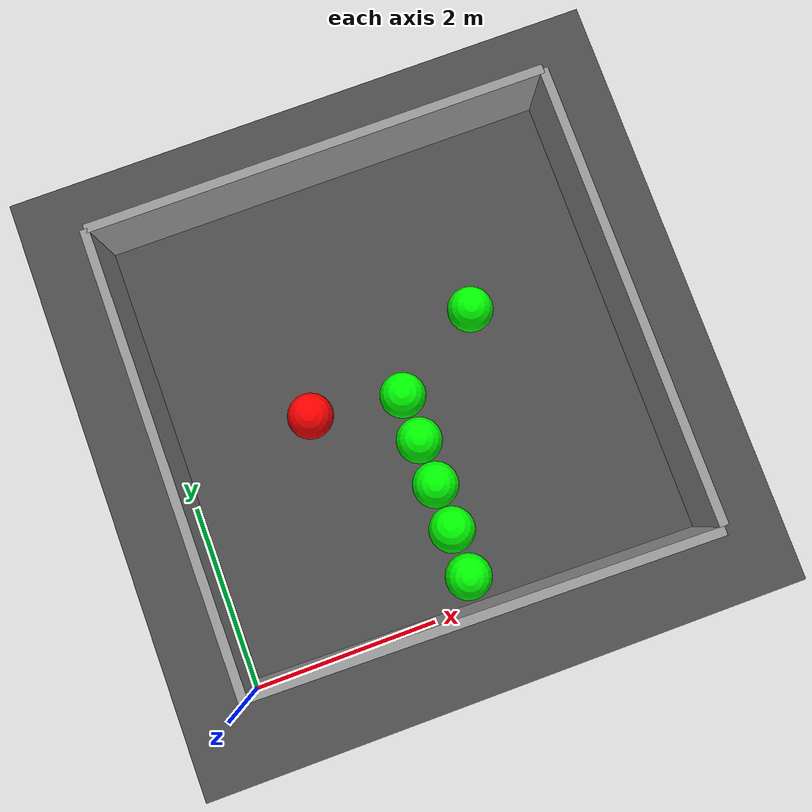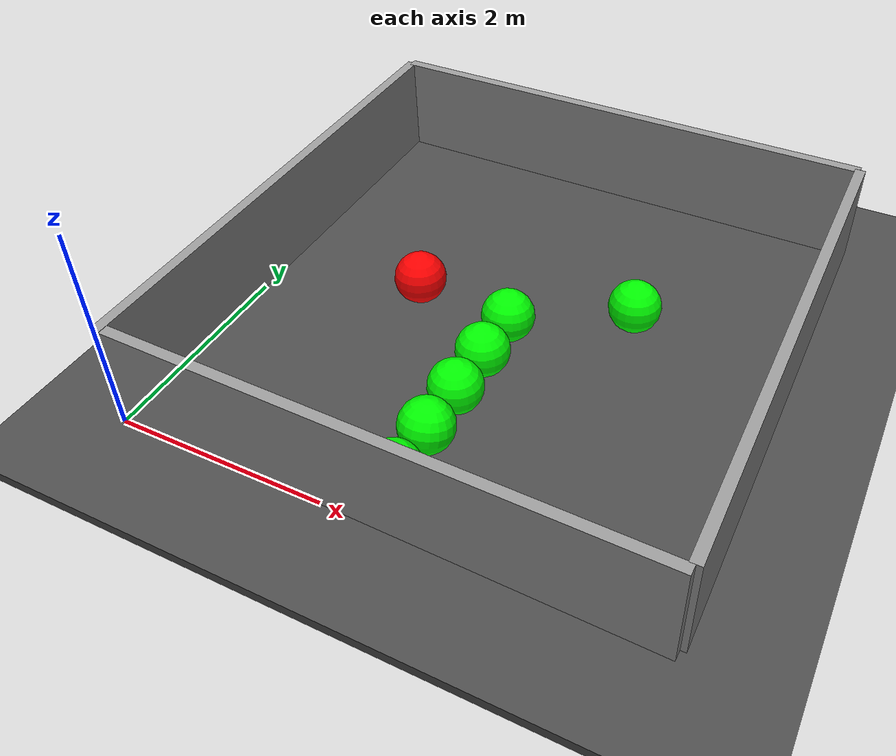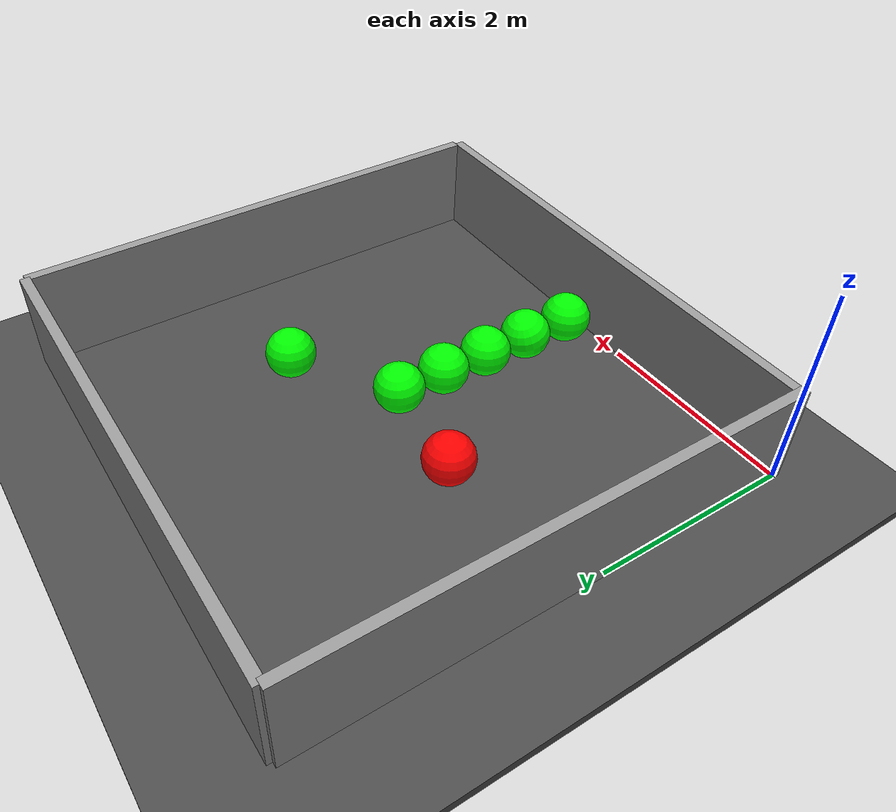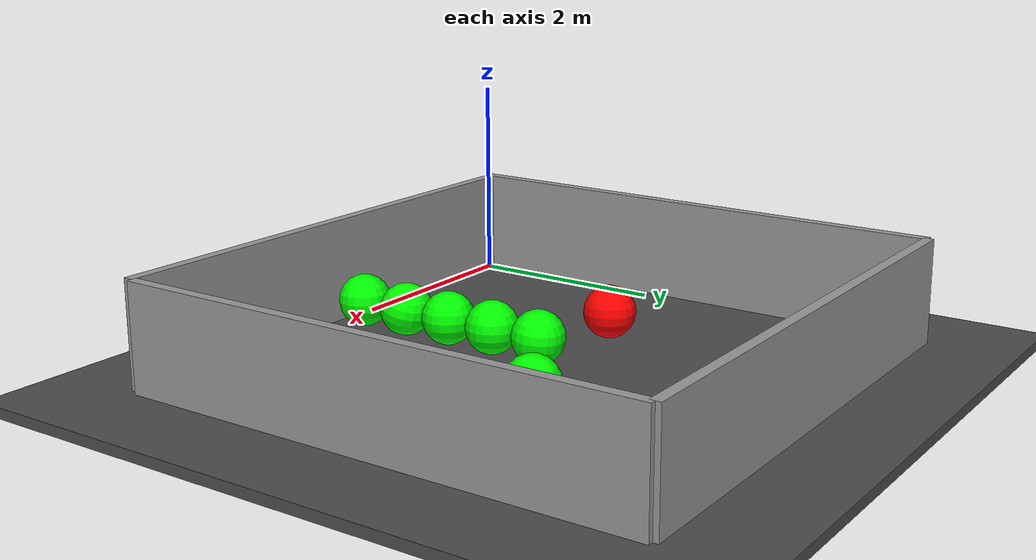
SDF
<sdf version="1.7">
 <world name="default">
  <light name="sun" type="directional">
   <pose>0 0 10 0 -0 0</pose>
   <diffuse>0.8 0.8 0.8 1</diffuse>
   <specular>0.2 0.2 0.2 1</specular>
   <attenuation>
    <range>1000</range>
    <constant>0.9</constant>
    <linear>0.01</linear>
    <quadratic>0.001</quadratic>
   </attenuation>
   <direction>-0.5 0.1 -0.9</direction>
   <spot><inner_angle>0</inner_angle><outer_angle>0</outer_angle><falloff>0</falloff></spot>
  </light>
  <model name="ground_plane">
   <static>1</static>
   <link name="link">
    <collision name="collision">
     <geometry><plane><normal>0 0 1</normal><size>100 100</size></plane></geometry>
     <surface><friction><ode><mu>100</mu><mu2>50</mu2></ode></friction></surface>
    </collision>
    <visual name="visual">
     <cast_shadows>0</cast_shadows>
     <geometry><plane><normal>0 0 1</normal><size>100 100</size></plane></geometry>
     <material>
      <script><uri>file://media/materials/scripts/gazebo.material</uri><name>Gazebo/Grey</name></script>
     </material>
    </visual>
   </link>
  </model>
  <gravity>0 0 -9.8</gravity>
  <magnetic_field>6e-06 2.3e-05 -4.2e-05</magnetic_field>
  <atmosphere type="adiabatic"/>
  <physics type="ode">
   <max_step_size>0.001</max_step_size>
   <real_time_factor>1</real_time_factor>
   <real_time_update_rate>1000</real_time_update_rate>
  </physics>
  <scene><ambient>0.4 0.4 0.4 1</ambient><background>0.7 0.7 0.7 1</background><shadows>1</shadows></scene>
  <spherical_coordinates>
   <surface_model>EARTH_WGS84</surface_model>
   <latitude_deg>0</latitude_deg>
   <longitude_deg>0</longitude_deg>
   <elevation>0</elevation>
   <heading_deg>0</heading_deg>
  </spherical_coordinates>
  <audio><device>default</device></audio>
  <model name="asphalt_plane">
   <link name="link">
    <inertial>
     <mass>1</mass>
     <inertia><ixx>1</ixx><ixy>0</ixy><ixz>0</ixz><iyy>1</iyy><iyz>0</iyz><izz>1</izz></inertia>
    </inertial>
    <visual name="visual">
     <cast_shadows>0</cast_shadows>
     <geometry><box><size>20 20 0.1</size></box></geometry>
     <material>
      <script>
       <uri>model://asphalt_plane/materials/scripts</uri>
       <uri>model://asphalt_plane/materials/textures</uri>
       <name>vrc/asphalt</name>
      </script>
      <shader type="pixel"><normal_map>__default__</normal_map></shader>
      <ambient>1 1 1 1</ambient>
      <diffuse>0.5 0.5 0.5 1</diffuse>
      <specular>0.2 0.2 0.2 1</specular>
      <emissive>0 0 0 1</emissive>
     </material>
    </visual>
    <collision name="collision">
     <geometry><box><size>20 20 0.1</size></box></geometry>
     <surface>
      <friction>
       <ode><mu>1</mu><mu2>1</mu2><fdir1>0 0 0</fdir1><slip1>0</slip1><slip2>0</slip2></ode>
       <torsional>
        <coefficient>1</coefficient>
        <patch_radius>0</patch_radius>
        <surface_radius>0</surface_radius>
        <use_patch_radius>1</use_patch_radius>
        <ode><slip>0</slip></ode>
       </torsional>
      </friction>
      <bounce><restitution_coefficient>0</restitution_coefficient><threshold>1e+06</threshold></bounce>
      <contact>
       <collide_without_contact>0</collide_without_contact>
       <collide_without_contact_bitmask>1</collide_without_contact_bitmask>
       <collide_bitmask>1</collide_bitmask>
       <ode>
        <soft_cfm>0</soft_cfm>
        <soft_erp>0.2</soft_erp>
        <kp>1e+13</kp>
        <kd>1</kd>
        <max_vel>0.01</max_vel>
        <min_depth>0</min_depth>
       </ode>
       <bullet>
        <split_impulse>1</split_impulse>
        <split_impulse_penetration_threshold>-0.01</split_impulse_penetration_threshold>
        <soft_cfm>0</soft_cfm>
        <soft_erp>0.2</soft_erp>
        <kp>1e+13</kp>
        <kd>1</kd>
       </bullet>
      </contact>
     </surface>
    </collision>
   </link>
   <static>1</static>
   <pose>-0.408551 0.257522 0 0 -0 0</pose>
  </model>
  <model name="unit_box">
   <link name="link">
    <inertial>
     <mass>1</mass>
     <inertia>
      <ixx>0.166667</ixx>
      <ixy>0</ixy>
      <ixz>0</ixz>
      <iyy>0.166667</iyy>
      <iyz>0</iyz>
      <izz>0.166667</izz>
     </inertia>
    </inertial>
    <visual name="visual">
     <geometry><box><size>0.1 5 1</size></box></geometry>
     <material>
      <script><name>Gazebo/Grey</name><uri>file://media/materials/scripts/gazebo.material</uri></script>
      <shader type="pixel"><normal_map>__default__</normal_map></shader>
      <ambient>0.3 0.3 0.3 1</ambient>
      <diffuse>0.7 0.7 0.7 1</diffuse>
      <specular>0.01 0.01 0.01 1</specular>
      <emissive>0 0 0 1</emissive>
     </material>
    </visual>
    <collision name="collision">
     <geometry><box><size>1 1 1</size></box></geometry>
     <surface>
      <friction>
       <ode><mu>1</mu><mu2>1</mu2><fdir1>0 0 0</fdir1><slip1>0</slip1><slip2>0</slip2></ode>
       <torsional>
        <coefficient>1</coefficient>
        <patch_radius>0</patch_radius>
        <surface_radius>0</surface_radius>
        <use_patch_radius>1</use_patch_radius>
        <ode><slip>0</slip></ode>
       </torsional>
      </friction>
      <bounce><restitution_coefficient>0</restitution_coefficient><threshold>1e+06</threshold></bounce>
      <contact>
       <collide_without_contact>0</collide_without_contact>
       <collide_without_contact_bitmask>1</collide_without_contact_bitmask>
       <collide_bitmask>1</collide_bitmask>
       <ode>
        <soft_cfm>0</soft_cfm>
        <soft_erp>0.2</soft_erp>
        <kp>1e+13</kp>
        <kd>1</kd>
        <max_vel>0.01</max_vel>
        <min_depth>0</min_depth>
       </ode>
       <bullet>
        <split_impulse>1</split_impulse>
        <split_impulse_penetration_threshold>-0.01</split_impulse_penetration_threshold>
        <soft_cfm>0</soft_cfm>
        <soft_erp>0.2</soft_erp>
        <kp>1e+13</kp>
        <kd>1</kd>
       </bullet>
      </contact>
     </surface>
    </collision>
   </link>
   <static>0</static>
   <pose>0 2.5 0.55 0 -0 0</pose>
  </model>
  <model name="unit_box_clone">
   <link name="link">
    <inertial>
     <mass>1</mass>
     <inertia>
      <ixx>0.166667</ixx>
      <ixy>0</ixy>
      <ixz>0</ixz>
      <iyy>0.166667</iyy>
      <iyz>0</iyz>
      <izz>0.166667</izz>
     </inertia>
    </inertial>
    <visual name="visual">
     <geometry><box><size>0.1 5 1</size></box></geometry>
     <material>
      <script><name>Gazebo/Grey</name><uri>file://media/materials/scripts/gazebo.material</uri></script>
      <shader type="pixel"><normal_map>__default__</normal_map></shader>
      <ambient>0.3 0.3 0.3 1</ambient>
      <diffuse>0.7 0.7 0.7 1</diffuse>
      <specular>0.01 0.01 0.01 1</specular>
      <emissive>0 0 0 1</emissive>
     </material>
    </visual>
    <collision name="collision">
     <geometry><box><size>1 1 1</size></box></geometry>
     <surface>
      <friction>
       <ode><mu>1</mu><mu2>1</mu2><fdir1>0 0 0</fdir1><slip1>0</slip1><slip2>0</slip2></ode>
       <torsional>
        <coefficient>1</coefficient>
        <patch_radius>0</patch_radius>
        <surface_radius>0</surface_radius>
        <use_patch_radius>1</use_patch_radius>
        <ode><slip>0</slip></ode>
       </torsional>
      </friction>
      <bounce><restitution_coefficient>0</restitution_coefficient><threshold>1e+06</threshold></bounce>
      <contact>
       <collide_without_contact>0</collide_without_contact>
       <collide_without_contact_bitmask>1</collide_without_contact_bitmask>
       <collide_bitmask>1</collide_bitmask>
       <ode>
        <soft_cfm>0</soft_cfm>
        <soft_erp>0.2</soft_erp>
        <kp>1e+13</kp>
        <kd>1</kd>
        <max_vel>0.01</max_vel>
        <min_depth>0</min_depth>
       </ode>
       <bullet>
        <split_impulse>1</split_impulse>
        <split_impulse_penetration_threshold>-0.01</split_impulse_penetration_threshold>
        <soft_cfm>0</soft_cfm>
        <soft_erp>0.2</soft_erp>
        <kp>1e+13</kp>
        <kd>1</kd>
       </bullet>
      </contact>
     </surface>
    </collision>
   </link>
   <static>0</static>
   <pose>5 2.5 0.55 0 -0 0</pose>
  </model>
  <model name="unit_box_0">
   <link name="link">
    <inertial>
     <mass>1</mass>
     <inertia>
      <ixx>0.166667</ixx>
      <ixy>0</ixy>
      <ixz>0</ixz>
      <iyy>0.166667</iyy>
      <iyz>0</iyz>
      <izz>0.166667</izz>
     </inertia>
    </inertial>
    <visual name="visual">
     <geometry><box><size>5 0.1 1</size></box></geometry>
     <material>
      <script><name>Gazebo/Grey</name><uri>file://media/materials/scripts/gazebo.material</uri></script>
      <shader type="pixel"><normal_map>__default__</normal_map></shader>
      <ambient>0.3 0.3 0.3 1</ambient>
      <diffuse>0.7 0.7 0.7 1</diffuse>
      <specular>0.01 0.01 0.01 1</specular>
      <emissive>0 0 0 1</emissive>
     </material>
    </visual>
    <collision name="collision">
     <geometry><box><size>1 1 1</size></box></geometry>
     <surface>
      <friction>
       <ode><mu>1</mu><mu2>1</mu2><fdir1>0 0 0</fdir1><slip1>0</slip1><slip2>0</slip2></ode>
       <torsional>
        <coefficient>1</coefficient>
        <patch_radius>0</patch_radius>
        <surface_radius>0</surface_radius>
        <use_patch_radius>1</use_patch_radius>
        <ode><slip>0</slip></ode>
       </torsional>
      </friction>
      <bounce><restitution_coefficient>0</restitution_coefficient><threshold>1e+06</threshold></bounce>
      <contact>
       <collide_without_contact>0</collide_without_contact>
       <collide_without_contact_bitmask>1</collide_without_contact_bitmask>
       <collide_bitmask>1</collide_bitmask>
       <ode>
        <soft_cfm>0</soft_cfm>
        <soft_erp>0.2</soft_erp>
        <kp>1e+13</kp>
        <kd>1</kd>
        <max_vel>0.01</max_vel>
        <min_depth>0</min_depth>
       </ode>
       <bullet>
        <split_impulse>1</split_impulse>
        <split_impulse_penetration_threshold>-0.01</split_impulse_penetration_threshold>
        <soft_cfm>0</soft_cfm>
        <soft_erp>0.2</soft_erp>
        <kp>1e+13</kp>
        <kd>1</kd>
       </bullet>
      </contact>
     </surface>
    </collision>
   </link>
   <static>0</static>
   <pose>2.5 5 0.55 0 -0 0</pose>
  </model>
  <model name="unit_sphere">
   <link name="link">
    <inertial>
     <mass>1</mass>
     <inertia><ixx>0.1</ixx><ixy>0</ixy><ixz>0</ixz><iyy>0.1</iyy><iyz>0</iyz><izz>0.1</izz></inertia>
    </inertial>
    <visual name="visual">
     <geometry><sphere><radius>0.25</radius></sphere></geometry>
     <material>
      <script><name>Gazebo/Grey</name><uri>file://media/materials/scripts/gazebo.material</uri></script>
      <shader type="pixel"><normal_map>__default__</normal_map></shader>
      <ambient>0 1 0 1</ambient>
      <diffuse>0.7 0.7 0.7 1</diffuse>
      <specular>0.01 0.01 0.01 1</specular>
      <emissive>0 0 0 1</emissive>
     </material>
    </visual>
    <collision name="collision">
     <geometry><sphere><radius>0.25</radius></sphere></geometry>
     <surface>
      <friction>
       <ode><mu>1</mu><mu2>1</mu2><fdir1>0 0 0</fdir1><slip1>0</slip1><slip2>0</slip2></ode>
       <torsional>
        <coefficient>1</coefficient>
        <patch_radius>0</patch_radius>
        <surface_radius>0</surface_radius>
        <use_patch_radius>1</use_patch_radius>
        <ode><slip>0</slip></ode>
       </torsional>
      </friction>
      <bounce><restitution_coefficient>0</restitution_coefficient><threshold>1e+06</threshold></bounce>
      <contact>
       <collide_without_contact>0</collide_without_contact>
       <collide_without_contact_bitmask>1</collide_without_contact_bitmask>
       <collide_bitmask>1</collide_bitmask>
       <ode>
        <soft_cfm>0</soft_cfm>
        <soft_erp>0.2</soft_erp>
        <kp>1e+13</kp>
        <kd>1</kd>
        <max_vel>0.01</max_vel>
        <min_depth>0</min_depth>
       </ode>
       <bullet>
        <split_impulse>1</split_impulse>
        <split_impulse_penetration_threshold>-0.01</split_impulse_penetration_threshold>
        <soft_cfm>0</soft_cfm>
        <soft_erp>0.2</soft_erp>
        <kp>1e+13</kp>
        <kd>1</kd>
       </bullet>
      </contact>
     </surface>
    </collision>
   </link>
   <static>0</static>
   <pose>2.49442 0.345948 0.3 0.029599 -0.007497 -0.01447</pose>
  </model>
  <model name="unit_sphere_clone">
   <link name="link">
    <inertial>
     <mass>1</mass>
     <inertia><ixx>0.1</ixx><ixy>0</ixy><ixz>0</ixz><iyy>0.1</iyy><iyz>0</iyz><izz>0.1</izz></inertia>
    </inertial>
    <visual name="visual">
     <geometry><sphere><radius>0.25</radius></sphere></geometry>
     <material>
      <script><name>Gazebo/Grey</name><uri>file://media/materials/scripts/gazebo.material</uri></script>
      <shader type="pixel"><normal_map>__default__</normal_map></shader>
      <ambient>0 1 0 1</ambient>
      <diffuse>0.7 0.7 0.7 1</diffuse>
      <specular>0.01 0.01 0.01 1</specular>
      <emissive>0 0 0 1</emissive>
     </material>
    </visual>
    <collision name="collision">
     <geometry><sphere><radius>0.25</radius></sphere></geometry>
     <surface>
      <friction>
       <ode><mu>1</mu><mu2>1</mu2><fdir1>0 0 0</fdir1><slip1>0</slip1><slip2>0</slip2></ode>
       <torsional>
        <coefficient>1</coefficient>
        <patch_radius>0</patch_radius>
        <surface_radius>0</surface_radius>
        <use_patch_radius>1</use_patch_radius>
        <ode><slip>0</slip></ode>
       </torsional>
      </friction>
      <bounce><restitution_coefficient>0</restitution_coefficient><threshold>1e+06</threshold></bounce>
      <contact>
       <collide_without_contact>0</collide_without_contact>
       <collide_without_contact_bitmask>1</collide_without_contact_bitmask>
       <collide_bitmask>1</collide_bitmask>
       <ode>
        <soft_cfm>0</soft_cfm>
        <soft_erp>0.2</soft_erp>
        <kp>1e+13</kp>
        <kd>1</kd>
        <max_vel>0.01</max_vel>
        <min_depth>0</min_depth>
       </ode>
       <bullet>
        <split_impulse>1</split_impulse>
        <split_impulse_penetration_threshold>-0.01</split_impulse_penetration_threshold>
        <soft_cfm>0</soft_cfm>
        <soft_erp>0.2</soft_erp>
        <kp>1e+13</kp>
        <kd>1</kd>
       </bullet>
      </contact>
     </surface>
    </collision>
   </link>
   <static>0</static>
   <pose>2.50069 0.863292 0.3 -0.268026 0.002364 -0.002779</pose>
  </model>
  <model name="unit_sphere_clone_0">
   <link name="link">
    <inertial>
     <mass>1</mass>
     <inertia><ixx>0.1</ixx><ixy>0</ixy><ixz>0</ixz><iyy>0.1</iyy><iyz>0</iyz><izz>0.1</izz></inertia>
    </inertial>
    <visual name="visual">
     <geometry><sphere><radius>0.25</radius></sphere></geometry>
     <material>
      <script><name>Gazebo/Grey</name><uri>file://media/materials/scripts/gazebo.material</uri></script>
      <shader type="pixel"><normal_map>__default__</normal_map></shader>
      <ambient>0 1 0 1</ambient>
      <diffuse>0.7 0.7 0.7 1</diffuse>
      <specular>0.01 0.01 0.01 1</specular>
      <emissive>0 0 0 1</emissive>
     </material>
    </visual>
    <collision name="collision">
     <geometry><sphere><radius>0.25</radius></sphere></geometry>
     <surface>
      <friction>
       <ode><mu>1</mu><mu2>1</mu2><fdir1>0 0 0</fdir1><slip1>0</slip1><slip2>0</slip2></ode>
       <torsional>
        <coefficient>1</coefficient>
        <patch_radius>0</patch_radius>
        <surface_radius>0</surface_radius>
        <use_patch_radius>1</use_patch_radius>
        <ode><slip>0</slip></ode>
       </torsional>
      </friction>
      <bounce><restitution_coefficient>0</restitution_coefficient><threshold>1e+06</threshold></bounce>
      <contact>
       <collide_without_contact>0</collide_without_contact>
       <collide_without_contact_bitmask>1</collide_without_contact_bitmask>
       <collide_bitmask>1</collide_bitmask>
       <ode>
        <soft_cfm>0</soft_cfm>
        <soft_erp>0.2</soft_erp>
        <kp>1e+13</kp>
        <kd>1</kd>
        <max_vel>0.01</max_vel>
        <min_depth>0</min_depth>
       </ode>
       <bullet>
        <split_impulse>1</split_impulse>
        <split_impulse_penetration_threshold>-0.01</split_impulse_penetration_threshold>
        <soft_cfm>0</soft_cfm>
        <soft_erp>0.2</soft_erp>
        <kp>1e+13</kp>
        <kd>1</kd>
       </bullet>
      </contact>
     </surface>
    </collision>
   </link>
   <static>0</static>
   <pose>2.50018 1.36332 0.3 0.016087 0.000746 0.001079</pose>
  </model>
  <model name="unit_sphere_clone_1">
   <link name="link">
    <inertial>
     <mass>1</mass>
     <inertia><ixx>0.1</ixx><ixy>0</ixy><ixz>0</ixz><iyy>0.1</iyy><iyz>0</iyz><izz>0.1</izz></inertia>
    </inertial>
    <visual name="visual">
     <geometry><sphere><radius>0.25</radius></sphere></geometry>
     <material>
      <script><name>Gazebo/Grey</name><uri>file://media/materials/scripts/gazebo.material</uri></script>
      <shader type="pixel"><normal_map>__default__</normal_map></shader>
      <ambient>0 1 0 1</ambient>
      <diffuse>0.7 0.7 0.7 1</diffuse>
      <specular>0.01 0.01 0.01 1</specular>
      <emissive>0 0 0 1</emissive>
     </material>
    </visual>
    <collision name="collision">
     <geometry><sphere><radius>0.25</radius></sphere></geometry>
     <surface>
      <friction>
       <ode><mu>1</mu><mu2>1</mu2><fdir1>0 0 0</fdir1><slip1>0</slip1><slip2>0</slip2></ode>
       <torsional>
        <coefficient>1</coefficient>
        <patch_radius>0</patch_radius>
        <surface_radius>0</surface_radius>
        <use_patch_radius>1</use_patch_radius>
        <ode><slip>0</slip></ode>
       </torsional>
      </friction>
      <bounce><restitution_coefficient>0</restitution_coefficient><threshold>1e+06</threshold></bounce>
      <contact>
       <collide_without_contact>0</collide_without_contact>
       <collide_without_contact_bitmask>1</collide_without_contact_bitmask>
       <collide_bitmask>1</collide_bitmask>
       <ode>
        <soft_cfm>0</soft_cfm>
        <soft_erp>0.2</soft_erp>
        <kp>1e+13</kp>
        <kd>1</kd>
        <max_vel>0.01</max_vel>
        <min_depth>0</min_depth>
       </ode>
       <bullet>
        <split_impulse>1</split_impulse>
        <split_impulse_penetration_threshold>-0.01</split_impulse_penetration_threshold>
        <soft_cfm>0</soft_cfm>
        <soft_erp>0.2</soft_erp>
        <kp>1e+13</kp>
        <kd>1</kd>
       </bullet>
      </contact>
     </surface>
    </collision>
   </link>
   <static>0</static>
   <pose>2.49996 1.86344 0.3 -0.003496 -0.000168 -0.000223</pose>
  </model>
  <model name="unit_sphere_clone_2">
   <link name="link">
    <inertial>
     <mass>1</mass>
     <inertia><ixx>0.1</ixx><ixy>0</ixy><ixz>0</ixz><iyy>0.1</iyy><iyz>0</iyz><izz>0.1</izz></inertia>
    </inertial>
    <visual name="visual">
     <geometry><sphere><radius>0.25</radius></sphere></geometry>
     <material>
      <script><name>Gazebo/Grey</name><uri>file://media/materials/scripts/gazebo.material</uri></script>
      <shader type="pixel"><normal_map>__default__</normal_map></shader>
      <ambient>0 1 0 1</ambient>
      <diffuse>0.7 0.7 0.7 1</diffuse>
      <specular>0.01 0.01 0.01 1</specular>
      <emissive>0 0 0 1</emissive>
     </material>
    </visual>
    <collision name="collision">
     <geometry><sphere><radius>0.25</radius></sphere></geometry>
     <surface>
      <friction>
       <ode><mu>1</mu><mu2>1</mu2><fdir1>0 0 0</fdir1><slip1>0</slip1><slip2>0</slip2></ode>
       <torsional>
        <coefficient>1</coefficient>
        <patch_radius>0</patch_radius>
        <surface_radius>0</surface_radius>
        <use_patch_radius>1</use_patch_radius>
        <ode><slip>0</slip></ode>
       </torsional>
      </friction>
      <bounce><restitution_coefficient>0</restitution_coefficient><threshold>1e+06</threshold></bounce>
      <contact>
       <collide_without_contact>0</collide_without_contact>
       <collide_without_contact_bitmask>1</collide_without_contact_bitmask>
       <collide_bitmask>1</collide_bitmask>
       <ode>
        <soft_cfm>0</soft_cfm>
        <soft_erp>0.2</soft_erp>
        <kp>1e+13</kp>
        <kd>1</kd>
        <max_vel>0.01</max_vel>
        <min_depth>0</min_depth>
       </ode>
       <bullet>
        <split_impulse>1</split_impulse>
        <split_impulse_penetration_threshold>-0.01</split_impulse_penetration_threshold>
        <soft_cfm>0</soft_cfm>
        <soft_erp>0.2</soft_erp>
        <kp>1e+13</kp>
        <kd>1</kd>
       </bullet>
      </contact>
     </surface>
    </collision>
   </link>
   <static>0</static>
   <pose>2.50001 2.37218 0.3 -0.073771 2.6e-05 3.6e-05</pose>
  </model>
  <model name="unit_sphere_clone_2_clone">
   <link name="link">
    <inertial>
     <mass>1</mass>
     <inertia><ixx>0.1</ixx><ixy>0</ixy><ixz>0</ixz><iyy>0.1</iyy><iyz>0</iyz><izz>0.1</izz></inertia>
    </inertial>
    <visual name="visual">
     <geometry><sphere><radius>0.25</radius></sphere></geometry>
     <material>
      <script><name>Gazebo/Grey</name><uri>file://media/materials/scripts/gazebo.material</uri></script>
      <shader type="pixel"><normal_map>__default__</normal_map></shader>
      <ambient>0 1 0 1</ambient>
      <diffuse>0.7 0.7 0.7 1</diffuse>
      <specular>0.01 0.01 0.01 1</specular>
      <emissive>0 0 0 1</emissive>
     </material>
    </visual>
    <collision name="collision">
     <geometry><sphere><radius>0.25</radius></sphere></geometry>
     <surface>
      <friction>
       <ode><mu>1</mu><mu2>1</mu2><fdir1>0 0 0</fdir1><slip1>0</slip1><slip2>0</slip2></ode>
       <torsional>
        <coefficient>1</coefficient>
        <patch_radius>0</patch_radius>
        <surface_radius>0</surface_radius>
        <use_patch_radius>1</use_patch_radius>
        <ode><slip>0</slip></ode>
       </torsional>
      </friction>
      <bounce><restitution_coefficient>0</restitution_coefficient><threshold>1e+06</threshold></bounce>
      <contact>
       <collide_without_contact>0</collide_without_contact>
       <collide_without_contact_bitmask>1</collide_without_contact_bitmask>
       <collide_bitmask>1</collide_bitmask>
       <ode>
        <soft_cfm>0</soft_cfm>
        <soft_erp>0.2</soft_erp>
        <kp>1e+13</kp>
        <kd>1</kd>
        <max_vel>0.01</max_vel>
        <min_depth>0</min_depth>
       </ode>
       <bullet>
        <split_impulse>1</split_impulse>
        <split_impulse_penetration_threshold>-0.01</split_impulse_penetration_threshold>
        <soft_cfm>0</soft_cfm>
        <soft_erp>0.2</soft_erp>
        <kp>1e+13</kp>
        <kd>1</kd>
       </bullet>
      </contact>
     </surface>
    </collision>
   </link>
   <static>0</static>
   <pose>3.5 3 0.3 0 -0 0</pose>
  </model>
  <model name="unit_box_0_clone">
   <link name="link">
    <inertial>
     <mass>1</mass>
     <inertia>
      <ixx>0.166667</ixx>
      <ixy>0</ixy>
      <ixz>0</ixz>
      <iyy>0.166667</iyy>
      <iyz>0</iyz>
      <izz>0.166667</izz>
     </inertia>
    </inertial>
    <visual name="visual">
     <geometry><box><size>5 0.1 1</size></box></geometry>
     <material>
      <script><name>Gazebo/Grey</name><uri>file://media/materials/scripts/gazebo.material</uri></script>
      <shader type="pixel"><normal_map>__default__</normal_map></shader>
      <ambient>0.3 0.3 0.3 1</ambient>
      <diffuse>0.7 0.7 0.7 1</diffuse>
      <specular>0.01 0.01 0.01 1</specular>
      <emissive>0 0 0 1</emissive>
     </material>
    </visual>
    <collision name="collision">
     <geometry><box><size>5 0.1 1</size></box></geometry>
     <surface>
      <friction>
       <ode><mu>1</mu><mu2>1</mu2><fdir1>0 0 0</fdir1><slip1>0</slip1><slip2>0</slip2></ode>
       <torsional>
        <coefficient>1</coefficient>
        <patch_radius>0</patch_radius>
        <surface_radius>0</surface_radius>
        <use_patch_radius>1</use_patch_radius>
        <ode><slip>0</slip></ode>
       </torsional>
      </friction>
      <bounce><restitution_coefficient>0</restitution_coefficient><threshold>1e+06</threshold></bounce>
      <contact>
       <collide_without_contact>0</collide_without_contact>
       <collide_without_contact_bitmask>1</collide_without_contact_bitmask>
       <collide_bitmask>1</collide_bitmask>
       <ode>
        <soft_cfm>0</soft_cfm>
        <soft_erp>0.2</soft_erp>
        <kp>1e+13</kp>
        <kd>1</kd>
        <max_vel>0.01</max_vel>
        <min_depth>0</min_depth>
       </ode>
       <bullet>
        <split_impulse>1</split_impulse>
        <split_impulse_penetration_threshold>-0.01</split_impulse_penetration_threshold>
        <soft_cfm>0</soft_cfm>
        <soft_erp>0.2</soft_erp>
        <kp>1e+13</kp>
        <kd>1</kd>
       </bullet>
      </contact>
     </surface>
    </collision>
   </link>
   <static>1</static>
   <pose>2.5 0 0.547881 1.6e-05 -0.000848 -0.018172</pose>
  </model>
  <model name="unit_sphere_clone_2_clone_clone">
   <link name="link">
    <inertial>
     <mass>1</mass>
     <inertia><ixx>0.1</ixx><ixy>0</ixy><ixz>0</ixz><iyy>0.1</iyy><iyz>0</iyz><izz>0.1</izz></inertia>
    </inertial>
    <visual name="visual">
     <geometry><sphere><radius>0.25</radius></sphere></geometry>
     <material>
      <script><name>Gazebo/Grey</name><uri>file://media/materials/scripts/gazebo.material</uri></script>
      <shader type="pixel"><normal_map>__default__</normal_map></shader>
      <ambient>1 0 0 1</ambient>
      <diffuse>0.7 0.7 0.7 1</diffuse>
      <specular>0.01 0.01 0.01 1</specular>
      <emissive>0 0 0 1</emissive>
     </material>
    </visual>
    <collision name="collision">
     <geometry><sphere><radius>0.25</radius></sphere></geometry>
     <surface>
      <friction>
       <ode><mu>1</mu><mu2>1</mu2><fdir1>0 0 0</fdir1><slip1>0</slip1><slip2>0</slip2></ode>
       <torsional>
        <coefficient>1</coefficient>
        <patch_radius>0</patch_radius>
        <surface_radius>0</surface_radius>
        <use_patch_radius>1</use_patch_radius>
        <ode><slip>0</slip></ode>
       </torsional>
      </friction>
      <bounce><restitution_coefficient>0</restitution_coefficient><threshold>1e+06</threshold></bounce>
      <contact>
       <collide_without_contact>0</collide_without_contact>
       <collide_without_contact_bitmask>1</collide_without_contact_bitmask>
       <collide_bitmask>1</collide_bitmask>
       <ode>
        <soft_cfm>0</soft_cfm>
        <soft_erp>0.2</soft_erp>
        <kp>1e+13</kp>
        <kd>1</kd>
        <max_vel>0.01</max_vel>
        <min_depth>0</min_depth>
       </ode>
       <bullet>
        <split_impulse>1</split_impulse>
        <split_impulse_penetration_threshold>-0.01</split_impulse_penetration_threshold>
        <soft_cfm>0</soft_cfm>
        <soft_erp>0.2</soft_erp>
        <kp>1e+13</kp>
        <kd>1</kd>
       </bullet>
      </contact>
     </surface>
    </collision>
   </link>
   <static>0</static>
   <pose>1.5 2.5 0.3 0 -0 0</pose>
  </model>
 </world>
</sdf>
